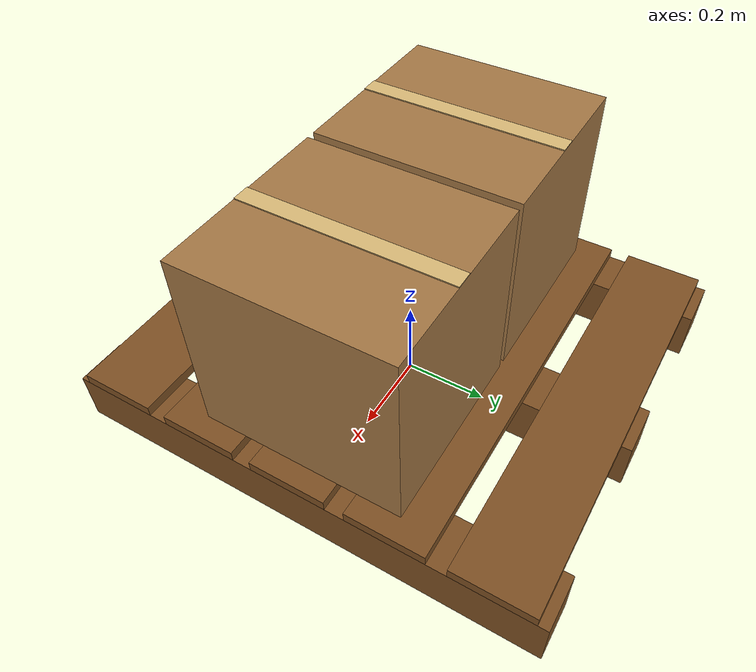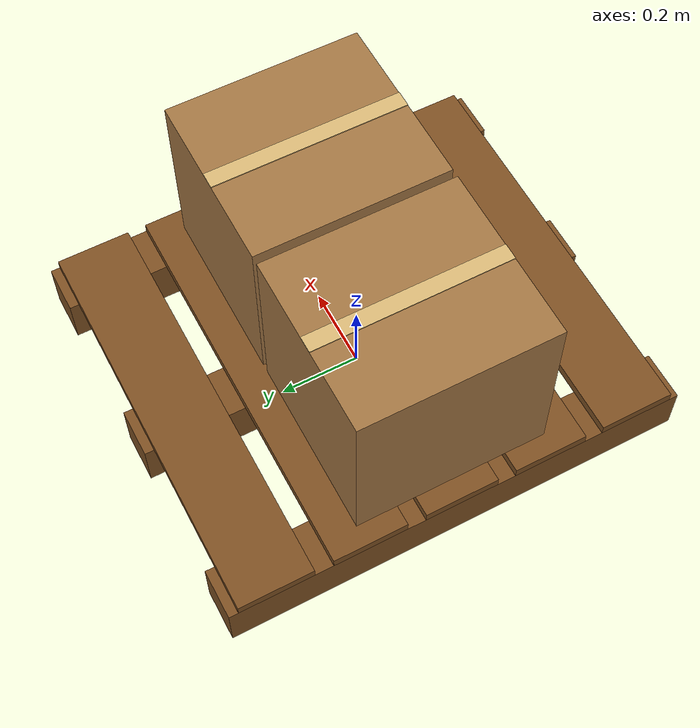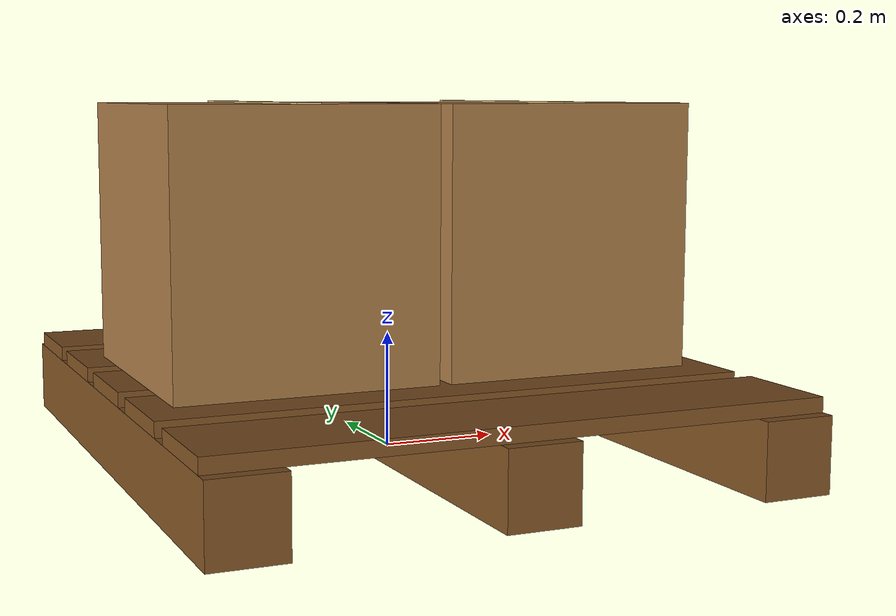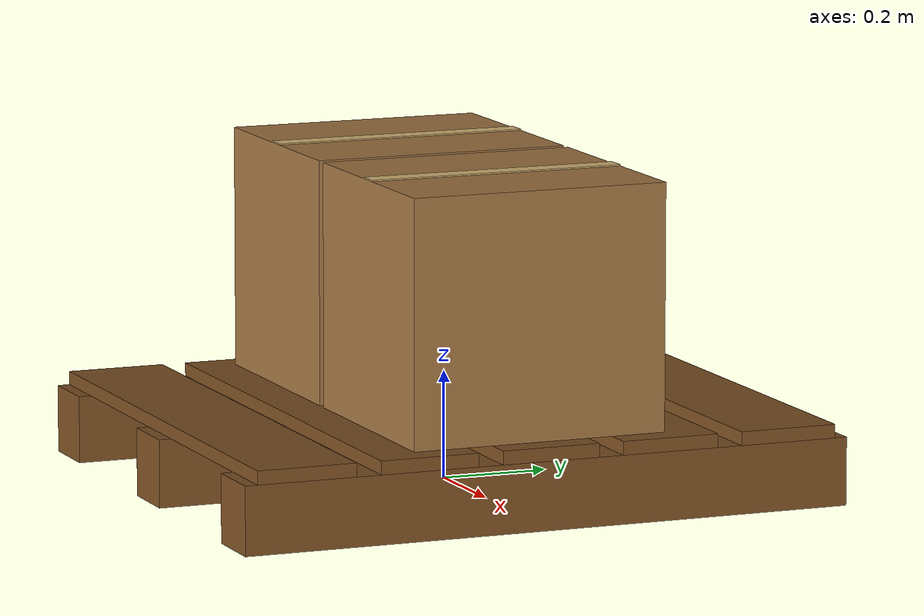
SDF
<?xml version="1.0"?>
<sdf version="1.9">
  <model name="wh_loaded_pallet">
    <static>true</static>
    <include>
      <uri>model://wh_pallet</uri>
      <name>pallet</name>
      <pose>0 0 0 0 0 0</pose>
    </include>
    <include>
      <uri>model://wh_box</uri>
      <name>box_0_0_0</name>
      <pose>-0.23 0 0.15 0 0 0</pose>
    </include>
    <include>
      <uri>model://wh_box</uri>
      <name>box_0_1_0</name>
      <pose>0.23 0 0.15 0 0 0</pose>
    </include>
  </model>
</sdf>

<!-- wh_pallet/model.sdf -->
<sdf version="1.9">
  <model name="wh_pallet">
    <static>true</static>
    <link name="body">
      <collision name="pallet_collision">
        <pose>0 0 0.075 0 0 0</pose>
        <geometry>
          <box>
            <size>1 1.15 0.15</size>
          </box>
        </geometry>
      </collision>
      <visual name="slat_0_visual">
        <pose>0 -0.46 0.1375 0 0 0</pose>
        <geometry>
          <box>
            <size>1 0.184 0.025</size>
          </box>
        </geometry>
        <material>
          <ambient>0.5 0.32 0.14 1</ambient>
          <diffuse>0.5 0.32 0.14 1</diffuse>
          <specular>0.06 0.06 0.06 1</specular>
        </material>
      </visual>
      <visual name="slat_1_visual">
        <pose>0 -0.23 0.1375 0 0 0</pose>
        <geometry>
          <box>
            <size>1 0.184 0.025</size>
          </box>
        </geometry>
        <material>
          <ambient>0.5 0.32 0.14 1</ambient>
          <diffuse>0.5 0.32 0.14 1</diffuse>
          <specular>0.06 0.06 0.06 1</specular>
        </material>
      </visual>
      <visual name="slat_2_visual">
        <pose>0 0 0.1375 0 0 0</pose>
        <geometry>
          <box>
            <size>1 0.184 0.025</size>
          </box>
        </geometry>
        <material>
          <ambient>0.5 0.32 0.14 1</ambient>
          <diffuse>0.5 0.32 0.14 1</diffuse>
          <specular>0.06 0.06 0.06 1</specular>
        </material>
      </visual>
      <visual name="slat_3_visual">
        <pose>0 0.23 0.1375 0 0 0</pose>
        <geometry>
          <box>
            <size>1 0.184 0.025</size>
          </box>
        </geometry>
        <material>
          <ambient>0.5 0.32 0.14 1</ambient>
          <diffuse>0.5 0.32 0.14 1</diffuse>
          <specular>0.06 0.06 0.06 1</specular>
        </material>
      </visual>
      <visual name="slat_4_visual">
        <pose>0 0.46 0.1375 0 0 0</pose>
        <geometry>
          <box>
            <size>1 0.184 0.025</size>
          </box>
        </geometry>
        <material>
          <ambient>0.5 0.32 0.14 1</ambient>
          <diffuse>0.5 0.32 0.14 1</diffuse>
          <specular>0.06 0.06 0.06 1</specular>
        </material>
      </visual>
      <visual name="runner_0_visual">
        <pose>-0.44 0 0.0625 0 0 0</pose>
        <geometry>
          <box>
            <size>0.12 1.15 0.125</size>
          </box>
        </geometry>
        <material>
          <ambient>0.5 0.32 0.14 1</ambient>
          <diffuse>0.5 0.32 0.14 1</diffuse>
          <specular>0.06 0.06 0.06 1</specular>
        </material>
      </visual>
      <visual name="runner_1_visual">
        <pose>0 0 0.0625 0 0 0</pose>
        <geometry>
          <box>
            <size>0.12 1.15 0.125</size>
          </box>
        </geometry>
        <material>
          <ambient>0.5 0.32 0.14 1</ambient>
          <diffuse>0.5 0.32 0.14 1</diffuse>
          <specular>0.06 0.06 0.06 1</specular>
        </material>
      </visual>
      <visual name="runner_2_visual">
        <pose>0.44 0 0.0625 0 0 0</pose>
        <geometry>
          <box>
            <size>0.12 1.15 0.125</size>
          </box>
        </geometry>
        <material>
          <ambient>0.5 0.32 0.14 1</ambient>
          <diffuse>0.5 0.32 0.14 1</diffuse>
          <specular>0.06 0.06 0.06 1</specular>
        </material>
      </visual>
    </link>
  </model>
</sdf>

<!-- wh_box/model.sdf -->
<sdf version="1.9">
  <model name="wh_box">
    <static>true</static>
    <link name="body">
      <visual name="carton_visual">
        <pose>0 0 0.225 0 0 0</pose>
        <geometry>
          <box>
            <size>0.44 0.48 0.45</size>
          </box>
        </geometry>
        <material>
          <ambient>0.65 0.47 0.27 1</ambient>
          <diffuse>0.65 0.47 0.27 1</diffuse>
          <specular>0.06 0.06 0.06 1</specular>
        </material>
      </visual>
      <collision name="carton_collision">
        <pose>0 0 0.225 0 0 0</pose>
        <geometry>
          <box>
            <size>0.44 0.48 0.45</size>
          </box>
        </geometry>
      </collision>
      <visual name="tape_visual">
        <pose>0 0 0.45125 0 0 0</pose>
        <geometry>
          <box>
            <size>0.04 0.48 0.0025</size>
          </box>
        </geometry>
        <material>
          <ambient>0.86 0.73 0.47 1</ambient>
          <diffuse>0.86 0.73 0.47 1</diffuse>
          <specular>0.06 0.06 0.06 1</specular>
        </material>
      </visual>
    </link>
  </model>
</sdf>
